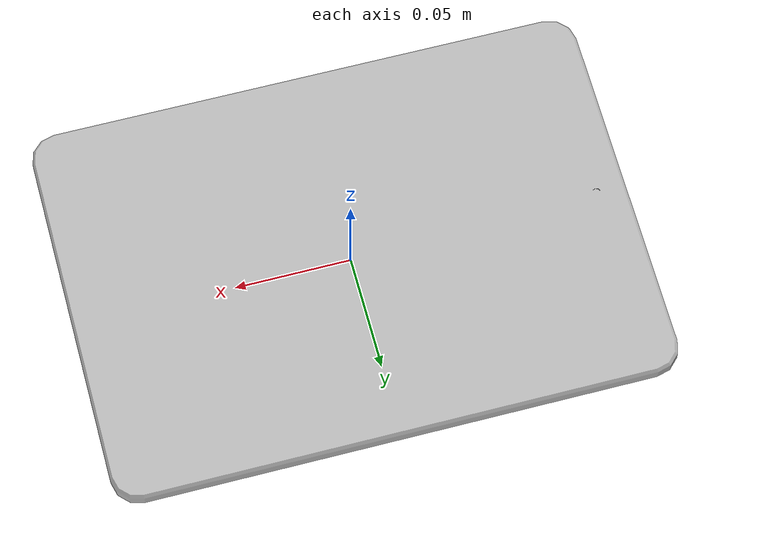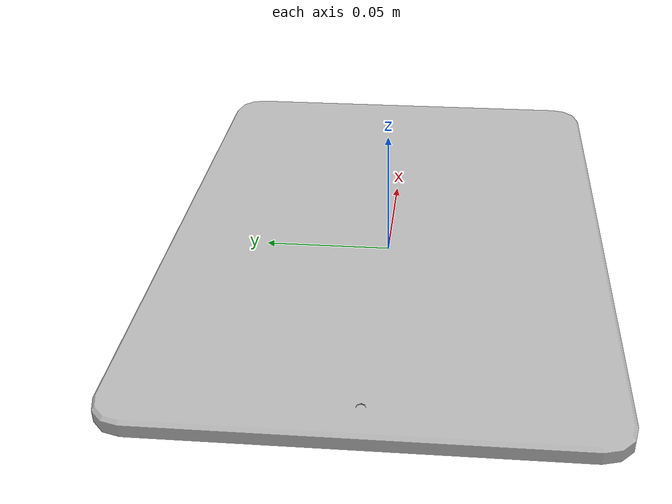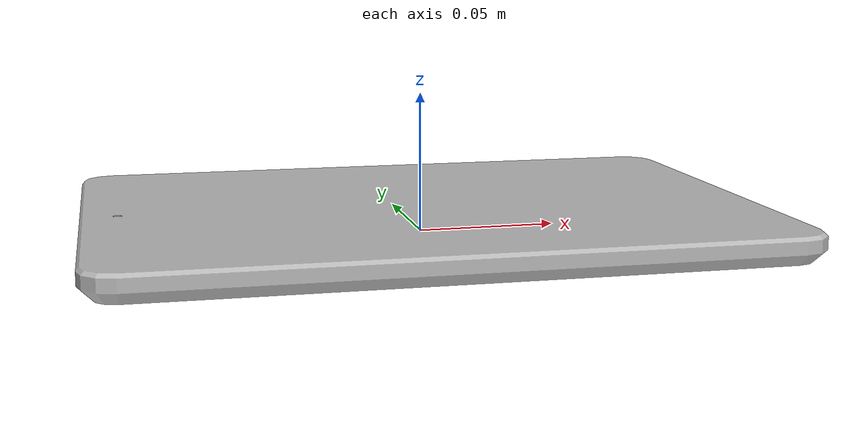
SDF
<?xml version='1.0'?>
<sdf version='1.4'>
  <model name='s__1816'>
    <pose>0 0 0 0 0 0</pose>
    <static>true</static>
    <link name='link'>
      <collision name='collision'>
        <pose>0 0 0 0 0 0</pose>
        <geometry>
          <box>
            <size>0.24 0.17 2</size>
          </box>
        </geometry>
      </collision>
      <visual name='visual'>
        <pose>0 0 0 0 0 0</pose>
        <geometry>
          <mesh><uri>model://s__1816/s__1816.dae</uri></mesh>
        </geometry>
      </visual>
    </link>
  </model>
</sdf>
